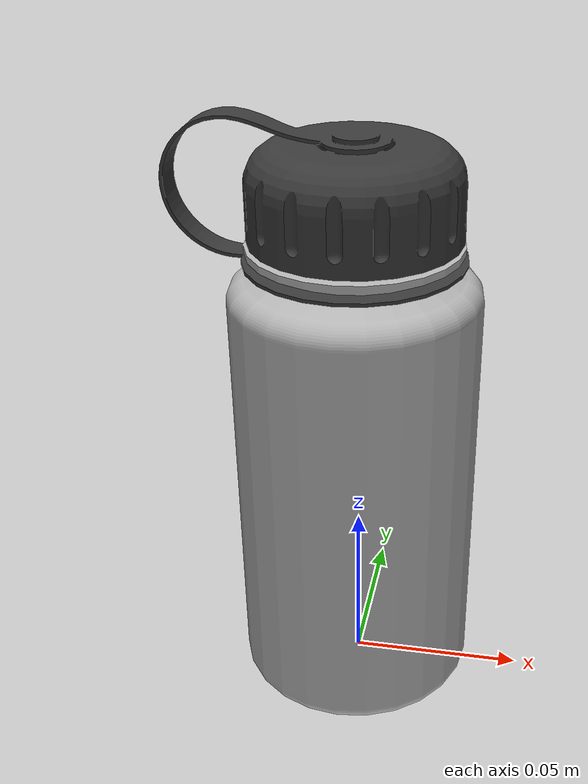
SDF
<?xml version="1.0"?>
<sdf version="1.4">
  <model name="bottle">
    <static>false</static>
    <link name="link">
      <inertial>
        <mass>0.390</mass>
        <inertia>
          <ixx>0.00058</ixx>
          <ixy>0</ixy>
          <ixz>0</ixz>
          <iyy>0.00058</iyy>
          <iyz>0</iyz>
          <izz>0.00019</izz>
        </inertia>
      </inertial>
      <collision name="collision">
	<pose>0 0 0.08 0 0 0</pose>
        <geometry>
          <cylinder>
            <radius>0.035</radius>
            <length>0.16</length>
          </cylinder>
        </geometry>
      </collision>
      <visual name="visual">
        <geometry>
          <mesh>
            <uri>model://bottle/meshes/WaterBottle.dae</uri>
	    <scale>0.020 0.020 0.020</scale>
          </mesh>
        </geometry>
	</visual>
    </link>
  </model>
</sdf>
